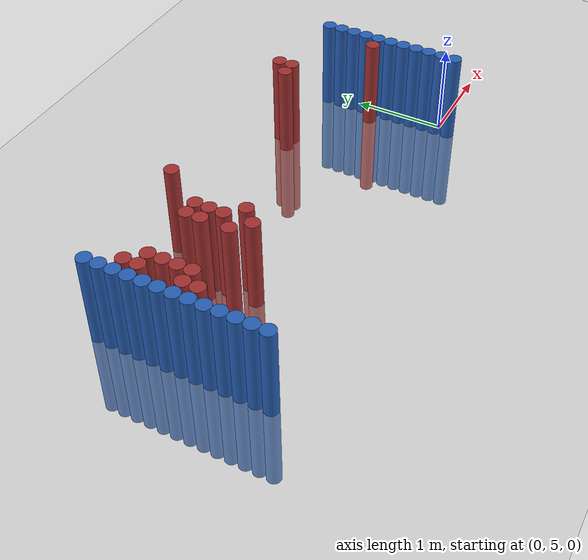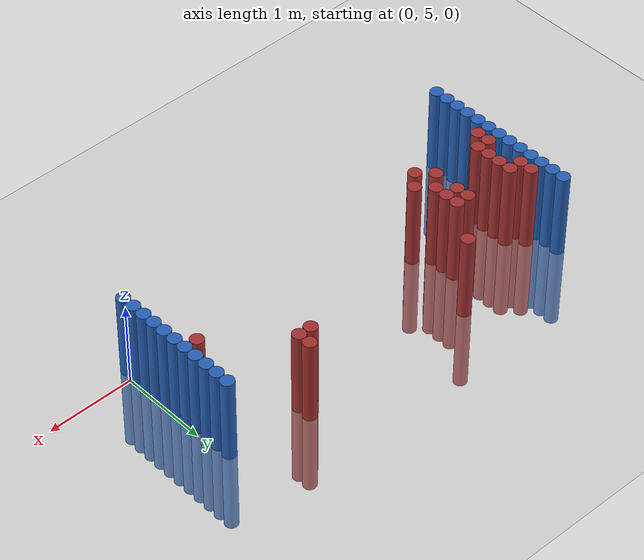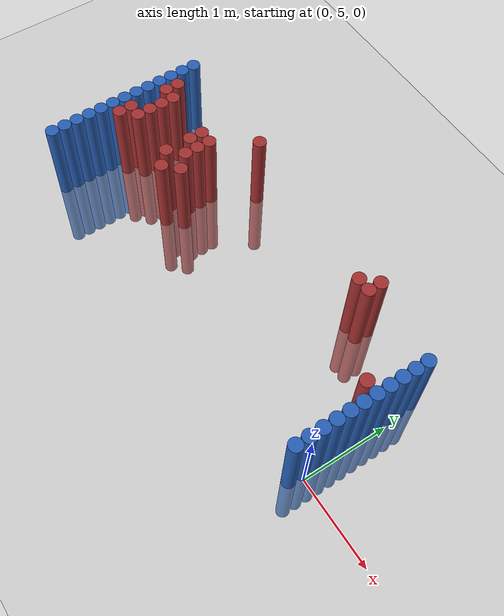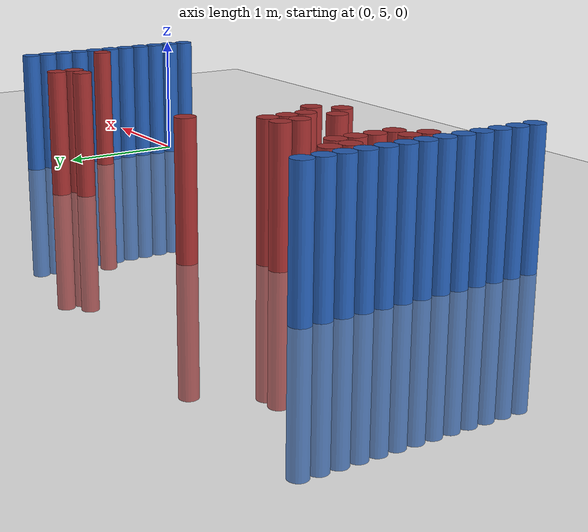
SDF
<sdf version="1.6">
 <world name="default">
  <model name="ground_plane">
   <static>1</static>
   <link name="link">
    <collision name="collision">
     <geometry><plane><normal>0 0 1</normal><size>100 100</size></plane></geometry>
     <surface><friction><ode><mu>100</mu><mu2>50</mu2></ode></friction></surface>
    </collision>
    <visual name="visual">
     <cast_shadows>0</cast_shadows>
     <geometry><plane><normal>0 0 1</normal><size>100 100</size></plane></geometry>
     <material>
      <script><uri>file://media/materials/scripts/gazebo.material</uri><name>Gazebo/Grey</name></script>
     </material>
    </visual>
   </link>
  </model>
  <model name="unit_cylinder_91">
   <static>1</static>
   <pose>-4.425000 4.725000 0.000000 0.000000 0.000000 0.000000</pose>
   <link name="link">
    <inertial>
     <mass>1</mass>
     <inertia><ixx>0.145833</ixx><ixy>0</ixy><ixz>0</ixz><iyy>0.145833</iyy><iyz>0</iyz><izz>0.125</izz></inertia>
    </inertial>
    <collision name="collision">
     <geometry><cylinder><radius>0.075000</radius><length>2</length></cylinder></geometry>
    </collision>
    <visual name="visual">
     <geometry><cylinder><radius>0.075000</radius><length>2</length></cylinder></geometry>
     <material>
      <ambient>0.152000 0.379000 0.720000 1</ambient>
      <diffuse>0.152000 0.379000 0.720000 1</diffuse>
     </material>
     <material>
      <script><name>Gazebo/Grey</name><uri>file://media/materials/scripts/gazebo.material</uri></script>
     </material>
    </visual>
   </link>
  </model>
  <model name="unit_cylinder_92">
   <static>1</static>
   <pose>-0.075000 4.875000 0.000000 0.000000 0.000000 0.000000</pose>
   <link name="link">
    <inertial>
     <mass>1</mass>
     <inertia><ixx>0.145833</ixx><ixy>0</ixy><ixz>0</ixz><iyy>0.145833</iyy><iyz>0</iyz><izz>0.125</izz></inertia>
    </inertial>
    <collision name="collision">
     <geometry><cylinder><radius>0.075000</radius><length>2</length></cylinder></geometry>
    </collision>
    <visual name="visual">
     <geometry><cylinder><radius>0.075000</radius><length>2</length></cylinder></geometry>
     <material>
      <ambient>0.152000 0.379000 0.720000 1</ambient>
      <diffuse>0.152000 0.379000 0.720000 1</diffuse>
     </material>
     <material>
      <script><name>Gazebo/Grey</name><uri>file://media/materials/scripts/gazebo.material</uri></script>
     </material>
    </visual>
   </link>
  </model>
  <model name="unit_cylinder_93">
   <static>1</static>
   <pose>-4.425000 4.875000 0.000000 0.000000 0.000000 0.000000</pose>
   <link name="link">
    <inertial>
     <mass>1</mass>
     <inertia><ixx>0.145833</ixx><ixy>0</ixy><ixz>0</ixz><iyy>0.145833</iyy><iyz>0</iyz><izz>0.125</izz></inertia>
    </inertial>
    <collision name="collision">
     <geometry><cylinder><radius>0.075000</radius><length>2</length></cylinder></geometry>
    </collision>
    <visual name="visual">
     <geometry><cylinder><radius>0.075000</radius><length>2</length></cylinder></geometry>
     <material>
      <ambient>0.152000 0.379000 0.720000 1</ambient>
      <diffuse>0.152000 0.379000 0.720000 1</diffuse>
     </material>
     <material>
      <script><name>Gazebo/Grey</name><uri>file://media/materials/scripts/gazebo.material</uri></script>
     </material>
    </visual>
   </link>
  </model>
  <model name="unit_cylinder_94">
   <static>1</static>
   <pose>-0.075000 5.025000 0.000000 0.000000 0.000000 0.000000</pose>
   <link name="link">
    <inertial>
     <mass>1</mass>
     <inertia><ixx>0.145833</ixx><ixy>0</ixy><ixz>0</ixz><iyy>0.145833</iyy><iyz>0</iyz><izz>0.125</izz></inertia>
    </inertial>
    <collision name="collision">
     <geometry><cylinder><radius>0.075000</radius><length>2</length></cylinder></geometry>
    </collision>
    <visual name="visual">
     <geometry><cylinder><radius>0.075000</radius><length>2</length></cylinder></geometry>
     <material>
      <ambient>0.152000 0.379000 0.720000 1</ambient>
      <diffuse>0.152000 0.379000 0.720000 1</diffuse>
     </material>
     <material>
      <script><name>Gazebo/Grey</name><uri>file://media/materials/scripts/gazebo.material</uri></script>
     </material>
    </visual>
   </link>
  </model>
  <model name="unit_cylinder_95">
   <static>1</static>
   <pose>-4.425000 5.025000 0.000000 0.000000 0.000000 0.000000</pose>
   <link name="link">
    <inertial>
     <mass>1</mass>
     <inertia><ixx>0.145833</ixx><ixy>0</ixy><ixz>0</ixz><iyy>0.145833</iyy><iyz>0</iyz><izz>0.125</izz></inertia>
    </inertial>
    <collision name="collision">
     <geometry><cylinder><radius>0.075000</radius><length>2</length></cylinder></geometry>
    </collision>
    <visual name="visual">
     <geometry><cylinder><radius>0.075000</radius><length>2</length></cylinder></geometry>
     <material>
      <ambient>0.152000 0.379000 0.720000 1</ambient>
      <diffuse>0.152000 0.379000 0.720000 1</diffuse>
     </material>
     <material>
      <script><name>Gazebo/Grey</name><uri>file://media/materials/scripts/gazebo.material</uri></script>
     </material>
    </visual>
   </link>
  </model>
  <model name="unit_cylinder_96">
   <static>1</static>
   <pose>-4.425000 5.175000 0.000000 0.000000 0.000000 0.000000</pose>
   <link name="link">
    <inertial>
     <mass>1</mass>
     <inertia><ixx>0.145833</ixx><ixy>0</ixy><ixz>0</ixz><iyy>0.145833</iyy><iyz>0</iyz><izz>0.125</izz></inertia>
    </inertial>
    <collision name="collision">
     <geometry><cylinder><radius>0.075000</radius><length>2</length></cylinder></geometry>
    </collision>
    <visual name="visual">
     <geometry><cylinder><radius>0.075000</radius><length>2</length></cylinder></geometry>
     <material>
      <ambient>0.152000 0.379000 0.720000 1</ambient>
      <diffuse>0.152000 0.379000 0.720000 1</diffuse>
     </material>
     <material>
      <script><name>Gazebo/Grey</name><uri>file://media/materials/scripts/gazebo.material</uri></script>
     </material>
    </visual>
   </link>
  </model>
  <model name="unit_cylinder_97">
   <static>1</static>
   <pose>-4.425000 5.325000 0.000000 0.000000 0.000000 0.000000</pose>
   <link name="link">
    <inertial>
     <mass>1</mass>
     <inertia><ixx>0.145833</ixx><ixy>0</ixy><ixz>0</ixz><iyy>0.145833</iyy><iyz>0</iyz><izz>0.125</izz></inertia>
    </inertial>
    <collision name="collision">
     <geometry><cylinder><radius>0.075000</radius><length>2</length></cylinder></geometry>
    </collision>
    <visual name="visual">
     <geometry><cylinder><radius>0.075000</radius><length>2</length></cylinder></geometry>
     <material>
      <ambient>0.152000 0.379000 0.720000 1</ambient>
      <diffuse>0.152000 0.379000 0.720000 1</diffuse>
     </material>
     <material>
      <script><name>Gazebo/Grey</name><uri>file://media/materials/scripts/gazebo.material</uri></script>
     </material>
    </visual>
   </link>
  </model>
  <model name="unit_cylinder_98">
   <static>1</static>
   <pose>-4.425000 5.475000 0.000000 0.000000 0.000000 0.000000</pose>
   <link name="link">
    <inertial>
     <mass>1</mass>
     <inertia><ixx>0.145833</ixx><ixy>0</ixy><ixz>0</ixz><iyy>0.145833</iyy><iyz>0</iyz><izz>0.125</izz></inertia>
    </inertial>
    <collision name="collision">
     <geometry><cylinder><radius>0.075000</radius><length>2</length></cylinder></geometry>
    </collision>
    <visual name="visual">
     <geometry><cylinder><radius>0.075000</radius><length>2</length></cylinder></geometry>
     <material>
      <ambient>0.152000 0.379000 0.720000 1</ambient>
      <diffuse>0.152000 0.379000 0.720000 1</diffuse>
     </material>
     <material>
      <script><name>Gazebo/Grey</name><uri>file://media/materials/scripts/gazebo.material</uri></script>
     </material>
    </visual>
   </link>
  </model>
  <model name="unit_cylinder_99">
   <static>1</static>
   <pose>-4.425000 5.625000 0.000000 0.000000 0.000000 0.000000</pose>
   <link name="link">
    <inertial>
     <mass>1</mass>
     <inertia><ixx>0.145833</ixx><ixy>0</ixy><ixz>0</ixz><iyy>0.145833</iyy><iyz>0</iyz><izz>0.125</izz></inertia>
    </inertial>
    <collision name="collision">
     <geometry><cylinder><radius>0.075000</radius><length>2</length></cylinder></geometry>
    </collision>
    <visual name="visual">
     <geometry><cylinder><radius>0.075000</radius><length>2</length></cylinder></geometry>
     <material>
      <ambient>0.152000 0.379000 0.720000 1</ambient>
      <diffuse>0.152000 0.379000 0.720000 1</diffuse>
     </material>
     <material>
      <script><name>Gazebo/Grey</name><uri>file://media/materials/scripts/gazebo.material</uri></script>
     </material>
    </visual>
   </link>
  </model>
  <model name="unit_cylinder_100">
   <static>1</static>
   <pose>-4.425000 5.775000 0.000000 0.000000 0.000000 0.000000</pose>
   <link name="link">
    <inertial>
     <mass>1</mass>
     <inertia><ixx>0.145833</ixx><ixy>0</ixy><ixz>0</ixz><iyy>0.145833</iyy><iyz>0</iyz><izz>0.125</izz></inertia>
    </inertial>
    <collision name="collision">
     <geometry><cylinder><radius>0.075000</radius><length>2</length></cylinder></geometry>
    </collision>
    <visual name="visual">
     <geometry><cylinder><radius>0.075000</radius><length>2</length></cylinder></geometry>
     <material>
      <ambient>0.152000 0.379000 0.720000 1</ambient>
      <diffuse>0.152000 0.379000 0.720000 1</diffuse>
     </material>
     <material>
      <script><name>Gazebo/Grey</name><uri>file://media/materials/scripts/gazebo.material</uri></script>
     </material>
    </visual>
   </link>
  </model>
  <model name="unit_cylinder_101">
   <static>1</static>
   <pose>-4.425000 5.925000 0.000000 0.000000 0.000000 0.000000</pose>
   <link name="link">
    <inertial>
     <mass>1</mass>
     <inertia><ixx>0.145833</ixx><ixy>0</ixy><ixz>0</ixz><iyy>0.145833</iyy><iyz>0</iyz><izz>0.125</izz></inertia>
    </inertial>
    <collision name="collision">
     <geometry><cylinder><radius>0.075000</radius><length>2</length></cylinder></geometry>
    </collision>
    <visual name="visual">
     <geometry><cylinder><radius>0.075000</radius><length>2</length></cylinder></geometry>
     <material>
      <ambient>0.152000 0.379000 0.720000 1</ambient>
      <diffuse>0.152000 0.379000 0.720000 1</diffuse>
     </material>
     <material>
      <script><name>Gazebo/Grey</name><uri>file://media/materials/scripts/gazebo.material</uri></script>
     </material>
    </visual>
   </link>
  </model>
  <model name="unit_cylinder_102">
   <static>1</static>
   <pose>-4.425000 6.075000 0.000000 0.000000 0.000000 0.000000</pose>
   <link name="link">
    <inertial>
     <mass>1</mass>
     <inertia><ixx>0.145833</ixx><ixy>0</ixy><ixz>0</ixz><iyy>0.145833</iyy><iyz>0</iyz><izz>0.125</izz></inertia>
    </inertial>
    <collision name="collision">
     <geometry><cylinder><radius>0.075000</radius><length>2</length></cylinder></geometry>
    </collision>
    <visual name="visual">
     <geometry><cylinder><radius>0.075000</radius><length>2</length></cylinder></geometry>
     <material>
      <ambient>0.152000 0.379000 0.720000 1</ambient>
      <diffuse>0.152000 0.379000 0.720000 1</diffuse>
     </material>
     <material>
      <script><name>Gazebo/Grey</name><uri>file://media/materials/scripts/gazebo.material</uri></script>
     </material>
    </visual>
   </link>
  </model>
  <model name="unit_cylinder_103">
   <static>1</static>
   <pose>-4.425000 6.225000 0.000000 0.000000 0.000000 0.000000</pose>
   <link name="link">
    <inertial>
     <mass>1</mass>
     <inertia><ixx>0.145833</ixx><ixy>0</ixy><ixz>0</ixz><iyy>0.145833</iyy><iyz>0</iyz><izz>0.125</izz></inertia>
    </inertial>
    <collision name="collision">
     <geometry><cylinder><radius>0.075000</radius><length>2</length></cylinder></geometry>
    </collision>
    <visual name="visual">
     <geometry><cylinder><radius>0.075000</radius><length>2</length></cylinder></geometry>
     <material>
      <ambient>0.152000 0.379000 0.720000 1</ambient>
      <diffuse>0.152000 0.379000 0.720000 1</diffuse>
     </material>
     <material>
      <script><name>Gazebo/Grey</name><uri>file://media/materials/scripts/gazebo.material</uri></script>
     </material>
    </visual>
   </link>
  </model>
  <model name="unit_cylinder_104">
   <static>1</static>
   <pose>-4.425000 6.375000 0.000000 0.000000 0.000000 0.000000</pose>
   <link name="link">
    <inertial>
     <mass>1</mass>
     <inertia><ixx>0.145833</ixx><ixy>0</ixy><ixz>0</ixz><iyy>0.145833</iyy><iyz>0</iyz><izz>0.125</izz></inertia>
    </inertial>
    <collision name="collision">
     <geometry><cylinder><radius>0.075000</radius><length>2</length></cylinder></geometry>
    </collision>
    <visual name="visual">
     <geometry><cylinder><radius>0.075000</radius><length>2</length></cylinder></geometry>
     <material>
      <ambient>0.152000 0.379000 0.720000 1</ambient>
      <diffuse>0.152000 0.379000 0.720000 1</diffuse>
     </material>
     <material>
      <script><name>Gazebo/Grey</name><uri>file://media/materials/scripts/gazebo.material</uri></script>
     </material>
    </visual>
   </link>
  </model>
  <model name="unit_cylinder_105">
   <static>1</static>
   <pose>-4.425000 6.525000 0.000000 0.000000 0.000000 0.000000</pose>
   <link name="link">
    <inertial>
     <mass>1</mass>
     <inertia><ixx>0.145833</ixx><ixy>0</ixy><ixz>0</ixz><iyy>0.145833</iyy><iyz>0</iyz><izz>0.125</izz></inertia>
    </inertial>
    <collision name="collision">
     <geometry><cylinder><radius>0.075000</radius><length>2</length></cylinder></geometry>
    </collision>
    <visual name="visual">
     <geometry><cylinder><radius>0.075000</radius><length>2</length></cylinder></geometry>
     <material>
      <ambient>0.152000 0.379000 0.720000 1</ambient>
      <diffuse>0.152000 0.379000 0.720000 1</diffuse>
     </material>
     <material>
      <script><name>Gazebo/Grey</name><uri>file://media/materials/scripts/gazebo.material</uri></script>
     </material>
    </visual>
   </link>
  </model>
  <model name="unit_cylinder_126">
   <static>1</static>
   <pose>-4.275000 5.475000 0.000000 0.000000 0.000000 0.000000</pose>
   <link name="link">
    <inertial>
     <mass>1</mass>
     <inertia><ixx>0.145833</ixx><ixy>0</ixy><ixz>0</ixz><iyy>0.145833</iyy><iyz>0</iyz><izz>0.125</izz></inertia>
    </inertial>
    <collision name="collision">
     <geometry><cylinder><radius>0.075000</radius><length>2</length></cylinder></geometry>
    </collision>
    <visual name="visual">
     <geometry><cylinder><radius>0.075000</radius><length>2</length></cylinder></geometry>
     <material>
      <ambient>0.648000 0.192000 0.192000 1</ambient>
      <diffuse>0.648000 0.192000 0.192000 1</diffuse>
     </material>
     <material>
      <script><name>Gazebo/Grey</name><uri>file://media/materials/scripts/gazebo.material</uri></script>
     </material>
    </visual>
   </link>
  </model>
  <model name="unit_cylinder_127">
   <static>1</static>
   <pose>-4.275000 5.625000 0.000000 0.000000 0.000000 0.000000</pose>
   <link name="link">
    <inertial>
     <mass>1</mass>
     <inertia><ixx>0.145833</ixx><ixy>0</ixy><ixz>0</ixz><iyy>0.145833</iyy><iyz>0</iyz><izz>0.125</izz></inertia>
    </inertial>
    <collision name="collision">
     <geometry><cylinder><radius>0.075000</radius><length>2</length></cylinder></geometry>
    </collision>
    <visual name="visual">
     <geometry><cylinder><radius>0.075000</radius><length>2</length></cylinder></geometry>
     <material>
      <ambient>0.648000 0.192000 0.192000 1</ambient>
      <diffuse>0.648000 0.192000 0.192000 1</diffuse>
     </material>
     <material>
      <script><name>Gazebo/Grey</name><uri>file://media/materials/scripts/gazebo.material</uri></script>
     </material>
    </visual>
   </link>
  </model>
  <model name="unit_cylinder_128">
   <static>1</static>
   <pose>-4.275000 6.075000 0.000000 0.000000 0.000000 0.000000</pose>
   <link name="link">
    <inertial>
     <mass>1</mass>
     <inertia><ixx>0.145833</ixx><ixy>0</ixy><ixz>0</ixz><iyy>0.145833</iyy><iyz>0</iyz><izz>0.125</izz></inertia>
    </inertial>
    <collision name="collision">
     <geometry><cylinder><radius>0.075000</radius><length>2</length></cylinder></geometry>
    </collision>
    <visual name="visual">
     <geometry><cylinder><radius>0.075000</radius><length>2</length></cylinder></geometry>
     <material>
      <ambient>0.648000 0.192000 0.192000 1</ambient>
      <diffuse>0.648000 0.192000 0.192000 1</diffuse>
     </material>
     <material>
      <script><name>Gazebo/Grey</name><uri>file://media/materials/scripts/gazebo.material</uri></script>
     </material>
    </visual>
   </link>
  </model>
  <model name="unit_cylinder_129">
   <static>1</static>
   <pose>-4.275000 6.225000 0.000000 0.000000 0.000000 0.000000</pose>
   <link name="link">
    <inertial>
     <mass>1</mass>
     <inertia><ixx>0.145833</ixx><ixy>0</ixy><ixz>0</ixz><iyy>0.145833</iyy><iyz>0</iyz><izz>0.125</izz></inertia>
    </inertial>
    <collision name="collision">
     <geometry><cylinder><radius>0.075000</radius><length>2</length></cylinder></geometry>
    </collision>
    <visual name="visual">
     <geometry><cylinder><radius>0.075000</radius><length>2</length></cylinder></geometry>
     <material>
      <ambient>0.648000 0.192000 0.192000 1</ambient>
      <diffuse>0.648000 0.192000 0.192000 1</diffuse>
     </material>
     <material>
      <script><name>Gazebo/Grey</name><uri>file://media/materials/scripts/gazebo.material</uri></script>
     </material>
    </visual>
   </link>
  </model>
  <model name="unit_cylinder_137">
   <static>1</static>
   <pose>-4.125000 5.625000 0.000000 0.000000 0.000000 0.000000</pose>
   <link name="link">
    <inertial>
     <mass>1</mass>
     <inertia><ixx>0.145833</ixx><ixy>0</ixy><ixz>0</ixz><iyy>0.145833</iyy><iyz>0</iyz><izz>0.125</izz></inertia>
    </inertial>
    <collision name="collision">
     <geometry><cylinder><radius>0.075000</radius><length>2</length></cylinder></geometry>
    </collision>
    <visual name="visual">
     <geometry><cylinder><radius>0.075000</radius><length>2</length></cylinder></geometry>
     <material>
      <ambient>0.648000 0.192000 0.192000 1</ambient>
      <diffuse>0.648000 0.192000 0.192000 1</diffuse>
     </material>
     <material>
      <script><name>Gazebo/Grey</name><uri>file://media/materials/scripts/gazebo.material</uri></script>
     </material>
    </visual>
   </link>
  </model>
  <model name="unit_cylinder_138">
   <static>1</static>
   <pose>-4.125000 5.775000 0.000000 0.000000 0.000000 0.000000</pose>
   <link name="link">
    <inertial>
     <mass>1</mass>
     <inertia><ixx>0.145833</ixx><ixy>0</ixy><ixz>0</ixz><iyy>0.145833</iyy><iyz>0</iyz><izz>0.125</izz></inertia>
    </inertial>
    <collision name="collision">
     <geometry><cylinder><radius>0.075000</radius><length>2</length></cylinder></geometry>
    </collision>
    <visual name="visual">
     <geometry><cylinder><radius>0.075000</radius><length>2</length></cylinder></geometry>
     <material>
      <ambient>0.648000 0.192000 0.192000 1</ambient>
      <diffuse>0.648000 0.192000 0.192000 1</diffuse>
     </material>
     <material>
      <script><name>Gazebo/Grey</name><uri>file://media/materials/scripts/gazebo.material</uri></script>
     </material>
    </visual>
   </link>
  </model>
  <model name="unit_cylinder_139">
   <static>1</static>
   <pose>-4.125000 5.925000 0.000000 0.000000 0.000000 0.000000</pose>
   <link name="link">
    <inertial>
     <mass>1</mass>
     <inertia><ixx>0.145833</ixx><ixy>0</ixy><ixz>0</ixz><iyy>0.145833</iyy><iyz>0</iyz><izz>0.125</izz></inertia>
    </inertial>
    <collision name="collision">
     <geometry><cylinder><radius>0.075000</radius><length>2</length></cylinder></geometry>
    </collision>
    <visual name="visual">
     <geometry><cylinder><radius>0.075000</radius><length>2</length></cylinder></geometry>
     <material>
      <ambient>0.648000 0.192000 0.192000 1</ambient>
      <diffuse>0.648000 0.192000 0.192000 1</diffuse>
     </material>
     <material>
      <script><name>Gazebo/Grey</name><uri>file://media/materials/scripts/gazebo.material</uri></script>
     </material>
    </visual>
   </link>
  </model>
  <model name="unit_cylinder_140">
   <static>1</static>
   <pose>-4.125000 6.075000 0.000000 0.000000 0.000000 0.000000</pose>
   <link name="link">
    <inertial>
     <mass>1</mass>
     <inertia><ixx>0.145833</ixx><ixy>0</ixy><ixz>0</ixz><iyy>0.145833</iyy><iyz>0</iyz><izz>0.125</izz></inertia>
    </inertial>
    <collision name="collision">
     <geometry><cylinder><radius>0.075000</radius><length>2</length></cylinder></geometry>
    </collision>
    <visual name="visual">
     <geometry><cylinder><radius>0.075000</radius><length>2</length></cylinder></geometry>
     <material>
      <ambient>0.648000 0.192000 0.192000 1</ambient>
      <diffuse>0.648000 0.192000 0.192000 1</diffuse>
     </material>
     <material>
      <script><name>Gazebo/Grey</name><uri>file://media/materials/scripts/gazebo.material</uri></script>
     </material>
    </visual>
   </link>
  </model>
  <model name="unit_cylinder_147">
   <static>1</static>
   <pose>-3.525000 5.625000 0.000000 0.000000 0.000000 0.000000</pose>
   <link name="link">
    <inertial>
     <mass>1</mass>
     <inertia><ixx>0.145833</ixx><ixy>0</ixy><ixz>0</ixz><iyy>0.145833</iyy><iyz>0</iyz><izz>0.125</izz></inertia>
    </inertial>
    <collision name="collision">
     <geometry><cylinder><radius>0.075000</radius><length>2</length></cylinder></geometry>
    </collision>
    <visual name="visual">
     <geometry><cylinder><radius>0.075000</radius><length>2</length></cylinder></geometry>
     <material>
      <ambient>0.648000 0.192000 0.192000 1</ambient>
      <diffuse>0.648000 0.192000 0.192000 1</diffuse>
     </material>
     <material>
      <script><name>Gazebo/Grey</name><uri>file://media/materials/scripts/gazebo.material</uri></script>
     </material>
    </visual>
   </link>
  </model>
  <model name="unit_cylinder_148">
   <static>1</static>
   <pose>-3.525000 5.925000 0.000000 0.000000 0.000000 0.000000</pose>
   <link name="link">
    <inertial>
     <mass>1</mass>
     <inertia><ixx>0.145833</ixx><ixy>0</ixy><ixz>0</ixz><iyy>0.145833</iyy><iyz>0</iyz><izz>0.125</izz></inertia>
    </inertial>
    <collision name="collision">
     <geometry><cylinder><radius>0.075000</radius><length>2</length></cylinder></geometry>
    </collision>
    <visual name="visual">
     <geometry><cylinder><radius>0.075000</radius><length>2</length></cylinder></geometry>
     <material>
      <ambient>0.648000 0.192000 0.192000 1</ambient>
      <diffuse>0.648000 0.192000 0.192000 1</diffuse>
     </material>
     <material>
      <script><name>Gazebo/Grey</name><uri>file://media/materials/scripts/gazebo.material</uri></script>
     </material>
    </visual>
   </link>
  </model>
  <model name="unit_cylinder_149">
   <static>1</static>
   <pose>-3.525000 6.075000 0.000000 0.000000 0.000000 0.000000</pose>
   <link name="link">
    <inertial>
     <mass>1</mass>
     <inertia><ixx>0.145833</ixx><ixy>0</ixy><ixz>0</ixz><iyy>0.145833</iyy><iyz>0</iyz><izz>0.125</izz></inertia>
    </inertial>
    <collision name="collision">
     <geometry><cylinder><radius>0.075000</radius><length>2</length></cylinder></geometry>
    </collision>
    <visual name="visual">
     <geometry><cylinder><radius>0.075000</radius><length>2</length></cylinder></geometry>
     <material>
      <ambient>0.648000 0.192000 0.192000 1</ambient>
      <diffuse>0.648000 0.192000 0.192000 1</diffuse>
     </material>
     <material>
      <script><name>Gazebo/Grey</name><uri>file://media/materials/scripts/gazebo.material</uri></script>
     </material>
    </visual>
   </link>
  </model>
  <model name="unit_cylinder_156">
   <static>1</static>
   <pose>-3.375000 5.475000 0.000000 0.000000 0.000000 0.000000</pose>
   <link name="link">
    <inertial>
     <mass>1</mass>
     <inertia><ixx>0.145833</ixx><ixy>0</ixy><ixz>0</ixz><iyy>0.145833</iyy><iyz>0</iyz><izz>0.125</izz></inertia>
    </inertial>
    <collision name="collision">
     <geometry><cylinder><radius>0.075000</radius><length>2</length></cylinder></geometry>
    </collision>
    <visual name="visual">
     <geometry><cylinder><radius>0.075000</radius><length>2</length></cylinder></geometry>
     <material>
      <ambient>0.648000 0.192000 0.192000 1</ambient>
      <diffuse>0.648000 0.192000 0.192000 1</diffuse>
     </material>
     <material>
      <script><name>Gazebo/Grey</name><uri>file://media/materials/scripts/gazebo.material</uri></script>
     </material>
    </visual>
   </link>
  </model>
  <model name="unit_cylinder_157">
   <static>1</static>
   <pose>-3.375000 5.775000 0.000000 0.000000 0.000000 0.000000</pose>
   <link name="link">
    <inertial>
     <mass>1</mass>
     <inertia><ixx>0.145833</ixx><ixy>0</ixy><ixz>0</ixz><iyy>0.145833</iyy><iyz>0</iyz><izz>0.125</izz></inertia>
    </inertial>
    <collision name="collision">
     <geometry><cylinder><radius>0.075000</radius><length>2</length></cylinder></geometry>
    </collision>
    <visual name="visual">
     <geometry><cylinder><radius>0.075000</radius><length>2</length></cylinder></geometry>
     <material>
      <ambient>0.648000 0.192000 0.192000 1</ambient>
      <diffuse>0.648000 0.192000 0.192000 1</diffuse>
     </material>
     <material>
      <script><name>Gazebo/Grey</name><uri>file://media/materials/scripts/gazebo.material</uri></script>
     </material>
    </visual>
   </link>
  </model>
  <model name="unit_cylinder_158">
   <static>1</static>
   <pose>-3.375000 5.925000 0.000000 0.000000 0.000000 0.000000</pose>
   <link name="link">
    <inertial>
     <mass>1</mass>
     <inertia><ixx>0.145833</ixx><ixy>0</ixy><ixz>0</ixz><iyy>0.145833</iyy><iyz>0</iyz><izz>0.125</izz></inertia>
    </inertial>
    <collision name="collision">
     <geometry><cylinder><radius>0.075000</radius><length>2</length></cylinder></geometry>
    </collision>
    <visual name="visual">
     <geometry><cylinder><radius>0.075000</radius><length>2</length></cylinder></geometry>
     <material>
      <ambient>0.648000 0.192000 0.192000 1</ambient>
      <diffuse>0.648000 0.192000 0.192000 1</diffuse>
     </material>
     <material>
      <script><name>Gazebo/Grey</name><uri>file://media/materials/scripts/gazebo.material</uri></script>
     </material>
    </visual>
   </link>
  </model>
  <model name="unit_cylinder_159">
   <static>1</static>
   <pose>-3.375000 6.075000 0.000000 0.000000 0.000000 0.000000</pose>
   <link name="link">
    <inertial>
     <mass>1</mass>
     <inertia><ixx>0.145833</ixx><ixy>0</ixy><ixz>0</ixz><iyy>0.145833</iyy><iyz>0</iyz><izz>0.125</izz></inertia>
    </inertial>
    <collision name="collision">
     <geometry><cylinder><radius>0.075000</radius><length>2</length></cylinder></geometry>
    </collision>
    <visual name="visual">
     <geometry><cylinder><radius>0.075000</radius><length>2</length></cylinder></geometry>
     <material>
      <ambient>0.648000 0.192000 0.192000 1</ambient>
      <diffuse>0.648000 0.192000 0.192000 1</diffuse>
     </material>
     <material>
      <script><name>Gazebo/Grey</name><uri>file://media/materials/scripts/gazebo.material</uri></script>
     </material>
    </visual>
   </link>
  </model>
  <model name="unit_cylinder_166">
   <static>1</static>
   <pose>-3.225000 5.625000 0.000000 0.000000 0.000000 0.000000</pose>
   <link name="link">
    <inertial>
     <mass>1</mass>
     <inertia><ixx>0.145833</ixx><ixy>0</ixy><ixz>0</ixz><iyy>0.145833</iyy><iyz>0</iyz><izz>0.125</izz></inertia>
    </inertial>
    <collision name="collision">
     <geometry><cylinder><radius>0.075000</radius><length>2</length></cylinder></geometry>
    </collision>
    <visual name="visual">
     <geometry><cylinder><radius>0.075000</radius><length>2</length></cylinder></geometry>
     <material>
      <ambient>0.648000 0.192000 0.192000 1</ambient>
      <diffuse>0.648000 0.192000 0.192000 1</diffuse>
     </material>
     <material>
      <script><name>Gazebo/Grey</name><uri>file://media/materials/scripts/gazebo.material</uri></script>
     </material>
    </visual>
   </link>
  </model>
  <model name="unit_cylinder_170">
   <static>1</static>
   <pose>-3.075000 6.525000 0.000000 0.000000 0.000000 0.000000</pose>
   <link name="link">
    <inertial>
     <mass>1</mass>
     <inertia><ixx>0.145833</ixx><ixy>0</ixy><ixz>0</ixz><iyy>0.145833</iyy><iyz>0</iyz><izz>0.125</izz></inertia>
    </inertial>
    <collision name="collision">
     <geometry><cylinder><radius>0.075000</radius><length>2</length></cylinder></geometry>
    </collision>
    <visual name="visual">
     <geometry><cylinder><radius>0.075000</radius><length>2</length></cylinder></geometry>
     <material>
      <ambient>0.648000 0.192000 0.192000 1</ambient>
      <diffuse>0.648000 0.192000 0.192000 1</diffuse>
     </material>
     <material>
      <script><name>Gazebo/Grey</name><uri>file://media/materials/scripts/gazebo.material</uri></script>
     </material>
    </visual>
   </link>
  </model>
  <model name="unit_cylinder_180">
   <static>1</static>
   <pose>-1.125000 6.375000 0.000000 0.000000 0.000000 0.000000</pose>
   <link name="link">
    <inertial>
     <mass>1</mass>
     <inertia><ixx>0.145833</ixx><ixy>0</ixy><ixz>0</ixz><iyy>0.145833</iyy><iyz>0</iyz><izz>0.125</izz></inertia>
    </inertial>
    <collision name="collision">
     <geometry><cylinder><radius>0.075000</radius><length>2</length></cylinder></geometry>
    </collision>
    <visual name="visual">
     <geometry><cylinder><radius>0.075000</radius><length>2</length></cylinder></geometry>
     <material>
      <ambient>0.648000 0.192000 0.192000 1</ambient>
      <diffuse>0.648000 0.192000 0.192000 1</diffuse>
     </material>
     <material>
      <script><name>Gazebo/Grey</name><uri>file://media/materials/scripts/gazebo.material</uri></script>
     </material>
    </visual>
   </link>
  </model>
  <model name="unit_cylinder_182">
   <static>1</static>
   <pose>-0.975000 6.375000 0.000000 0.000000 0.000000 0.000000</pose>
   <link name="link">
    <inertial>
     <mass>1</mass>
     <inertia><ixx>0.145833</ixx><ixy>0</ixy><ixz>0</ixz><iyy>0.145833</iyy><iyz>0</iyz><izz>0.125</izz></inertia>
    </inertial>
    <collision name="collision">
     <geometry><cylinder><radius>0.075000</radius><length>2</length></cylinder></geometry>
    </collision>
    <visual name="visual">
     <geometry><cylinder><radius>0.075000</radius><length>2</length></cylinder></geometry>
     <material>
      <ambient>0.648000 0.192000 0.192000 1</ambient>
      <diffuse>0.648000 0.192000 0.192000 1</diffuse>
     </material>
     <material>
      <script><name>Gazebo/Grey</name><uri>file://media/materials/scripts/gazebo.material</uri></script>
     </material>
    </visual>
   </link>
  </model>
  <model name="unit_cylinder_183">
   <static>1</static>
   <pose>-0.975000 6.525000 0.000000 0.000000 0.000000 0.000000</pose>
   <link name="link">
    <inertial>
     <mass>1</mass>
     <inertia><ixx>0.145833</ixx><ixy>0</ixy><ixz>0</ixz><iyy>0.145833</iyy><iyz>0</iyz><izz>0.125</izz></inertia>
    </inertial>
    <collision name="collision">
     <geometry><cylinder><radius>0.075000</radius><length>2</length></cylinder></geometry>
    </collision>
    <visual name="visual">
     <geometry><cylinder><radius>0.075000</radius><length>2</length></cylinder></geometry>
     <material>
      <ambient>0.648000 0.192000 0.192000 1</ambient>
      <diffuse>0.648000 0.192000 0.192000 1</diffuse>
     </material>
     <material>
      <script><name>Gazebo/Grey</name><uri>file://media/materials/scripts/gazebo.material</uri></script>
     </material>
    </visual>
   </link>
  </model>
  <model name="unit_cylinder_189">
   <static>1</static>
   <pose>-0.225000 5.775000 0.000000 0.000000 0.000000 0.000000</pose>
   <link name="link">
    <inertial>
     <mass>1</mass>
     <inertia><ixx>0.145833</ixx><ixy>0</ixy><ixz>0</ixz><iyy>0.145833</iyy><iyz>0</iyz><izz>0.125</izz></inertia>
    </inertial>
    <collision name="collision">
     <geometry><cylinder><radius>0.075000</radius><length>2</length></cylinder></geometry>
    </collision>
    <visual name="visual">
     <geometry><cylinder><radius>0.075000</radius><length>2</length></cylinder></geometry>
     <material>
      <ambient>0.648000 0.192000 0.192000 1</ambient>
      <diffuse>0.648000 0.192000 0.192000 1</diffuse>
     </material>
     <material>
      <script><name>Gazebo/Grey</name><uri>file://media/materials/scripts/gazebo.material</uri></script>
     </material>
    </visual>
   </link>
  </model>
  <model name="unit_cylinder_196">
   <static>1</static>
   <pose>-0.075000 5.175000 0.000000 0.000000 0.000000 0.000000</pose>
   <link name="link">
    <inertial>
     <mass>1</mass>
     <inertia><ixx>0.145833</ixx><ixy>0</ixy><ixz>0</ixz><iyy>0.145833</iyy><iyz>0</iyz><izz>0.125</izz></inertia>
    </inertial>
    <collision name="collision">
     <geometry><cylinder><radius>0.075000</radius><length>2</length></cylinder></geometry>
    </collision>
    <visual name="visual">
     <geometry><cylinder><radius>0.075000</radius><length>2</length></cylinder></geometry>
     <material>
      <ambient>0.152000 0.379000 0.720000 1</ambient>
      <diffuse>0.152000 0.379000 0.720000 1</diffuse>
     </material>
     <material>
      <script><name>Gazebo/Grey</name><uri>file://media/materials/scripts/gazebo.material</uri></script>
     </material>
    </visual>
   </link>
  </model>
  <model name="unit_cylinder_197">
   <static>1</static>
   <pose>-0.075000 5.325000 0.000000 0.000000 0.000000 0.000000</pose>
   <link name="link">
    <inertial>
     <mass>1</mass>
     <inertia><ixx>0.145833</ixx><ixy>0</ixy><ixz>0</ixz><iyy>0.145833</iyy><iyz>0</iyz><izz>0.125</izz></inertia>
    </inertial>
    <collision name="collision">
     <geometry><cylinder><radius>0.075000</radius><length>2</length></cylinder></geometry>
    </collision>
    <visual name="visual">
     <geometry><cylinder><radius>0.075000</radius><length>2</length></cylinder></geometry>
     <material>
      <ambient>0.152000 0.379000 0.720000 1</ambient>
      <diffuse>0.152000 0.379000 0.720000 1</diffuse>
     </material>
     <material>
      <script><name>Gazebo/Grey</name><uri>file://media/materials/scripts/gazebo.material</uri></script>
     </material>
    </visual>
   </link>
  </model>
  <model name="unit_cylinder_198">
   <static>1</static>
   <pose>-0.075000 5.475000 0.000000 0.000000 0.000000 0.000000</pose>
   <link name="link">
    <inertial>
     <mass>1</mass>
     <inertia><ixx>0.145833</ixx><ixy>0</ixy><ixz>0</ixz><iyy>0.145833</iyy><iyz>0</iyz><izz>0.125</izz></inertia>
    </inertial>
    <collision name="collision">
     <geometry><cylinder><radius>0.075000</radius><length>2</length></cylinder></geometry>
    </collision>
    <visual name="visual">
     <geometry><cylinder><radius>0.075000</radius><length>2</length></cylinder></geometry>
     <material>
      <ambient>0.152000 0.379000 0.720000 1</ambient>
      <diffuse>0.152000 0.379000 0.720000 1</diffuse>
     </material>
     <material>
      <script><name>Gazebo/Grey</name><uri>file://media/materials/scripts/gazebo.material</uri></script>
     </material>
    </visual>
   </link>
  </model>
  <model name="unit_cylinder_199">
   <static>1</static>
   <pose>-0.075000 5.625000 0.000000 0.000000 0.000000 0.000000</pose>
   <link name="link">
    <inertial>
     <mass>1</mass>
     <inertia><ixx>0.145833</ixx><ixy>0</ixy><ixz>0</ixz><iyy>0.145833</iyy><iyz>0</iyz><izz>0.125</izz></inertia>
    </inertial>
    <collision name="collision">
     <geometry><cylinder><radius>0.075000</radius><length>2</length></cylinder></geometry>
    </collision>
    <visual name="visual">
     <geometry><cylinder><radius>0.075000</radius><length>2</length></cylinder></geometry>
     <material>
      <ambient>0.152000 0.379000 0.720000 1</ambient>
      <diffuse>0.152000 0.379000 0.720000 1</diffuse>
     </material>
     <material>
      <script><name>Gazebo/Grey</name><uri>file://media/materials/scripts/gazebo.material</uri></script>
     </material>
    </visual>
   </link>
  </model>
  <model name="unit_cylinder_200">
   <static>1</static>
   <pose>-0.075000 5.775000 0.000000 0.000000 0.000000 0.000000</pose>
   <link name="link">
    <inertial>
     <mass>1</mass>
     <inertia><ixx>0.145833</ixx><ixy>0</ixy><ixz>0</ixz><iyy>0.145833</iyy><iyz>0</iyz><izz>0.125</izz></inertia>
    </inertial>
    <collision name="collision">
     <geometry><cylinder><radius>0.075000</radius><length>2</length></cylinder></geometry>
    </collision>
    <visual name="visual">
     <geometry><cylinder><radius>0.075000</radius><length>2</length></cylinder></geometry>
     <material>
      <ambient>0.152000 0.379000 0.720000 1</ambient>
      <diffuse>0.152000 0.379000 0.720000 1</diffuse>
     </material>
     <material>
      <script><name>Gazebo/Grey</name><uri>file://media/materials/scripts/gazebo.material</uri></script>
     </material>
    </visual>
   </link>
  </model>
  <model name="unit_cylinder_201">
   <static>1</static>
   <pose>-0.075000 5.925000 0.000000 0.000000 0.000000 0.000000</pose>
   <link name="link">
    <inertial>
     <mass>1</mass>
     <inertia><ixx>0.145833</ixx><ixy>0</ixy><ixz>0</ixz><iyy>0.145833</iyy><iyz>0</iyz><izz>0.125</izz></inertia>
    </inertial>
    <collision name="collision">
     <geometry><cylinder><radius>0.075000</radius><length>2</length></cylinder></geometry>
    </collision>
    <visual name="visual">
     <geometry><cylinder><radius>0.075000</radius><length>2</length></cylinder></geometry>
     <material>
      <ambient>0.152000 0.379000 0.720000 1</ambient>
      <diffuse>0.152000 0.379000 0.720000 1</diffuse>
     </material>
     <material>
      <script><name>Gazebo/Grey</name><uri>file://media/materials/scripts/gazebo.material</uri></script>
     </material>
    </visual>
   </link>
  </model>
  <model name="unit_cylinder_202">
   <static>1</static>
   <pose>-0.075000 6.075000 0.000000 0.000000 0.000000 0.000000</pose>
   <link name="link">
    <inertial>
     <mass>1</mass>
     <inertia><ixx>0.145833</ixx><ixy>0</ixy><ixz>0</ixz><iyy>0.145833</iyy><iyz>0</iyz><izz>0.125</izz></inertia>
    </inertial>
    <collision name="collision">
     <geometry><cylinder><radius>0.075000</radius><length>2</length></cylinder></geometry>
    </collision>
    <visual name="visual">
     <geometry><cylinder><radius>0.075000</radius><length>2</length></cylinder></geometry>
     <material>
      <ambient>0.152000 0.379000 0.720000 1</ambient>
      <diffuse>0.152000 0.379000 0.720000 1</diffuse>
     </material>
     <material>
      <script><name>Gazebo/Grey</name><uri>file://media/materials/scripts/gazebo.material</uri></script>
     </material>
    </visual>
   </link>
  </model>
  <model name="unit_cylinder_203">
   <static>1</static>
   <pose>-0.075000 6.225000 0.000000 0.000000 0.000000 0.000000</pose>
   <link name="link">
    <inertial>
     <mass>1</mass>
     <inertia><ixx>0.145833</ixx><ixy>0</ixy><ixz>0</ixz><iyy>0.145833</iyy><iyz>0</iyz><izz>0.125</izz></inertia>
    </inertial>
    <collision name="collision">
     <geometry><cylinder><radius>0.075000</radius><length>2</length></cylinder></geometry>
    </collision>
    <visual name="visual">
     <geometry><cylinder><radius>0.075000</radius><length>2</length></cylinder></geometry>
     <material>
      <ambient>0.152000 0.379000 0.720000 1</ambient>
      <diffuse>0.152000 0.379000 0.720000 1</diffuse>
     </material>
     <material>
      <script><name>Gazebo/Grey</name><uri>file://media/materials/scripts/gazebo.material</uri></script>
     </material>
    </visual>
   </link>
  </model>
  <model name="unit_cylinder_204">
   <static>1</static>
   <pose>-0.075000 6.375000 0.000000 0.000000 0.000000 0.000000</pose>
   <link name="link">
    <inertial>
     <mass>1</mass>
     <inertia><ixx>0.145833</ixx><ixy>0</ixy><ixz>0</ixz><iyy>0.145833</iyy><iyz>0</iyz><izz>0.125</izz></inertia>
    </inertial>
    <collision name="collision">
     <geometry><cylinder><radius>0.075000</radius><length>2</length></cylinder></geometry>
    </collision>
    <visual name="visual">
     <geometry><cylinder><radius>0.075000</radius><length>2</length></cylinder></geometry>
     <material>
      <ambient>0.152000 0.379000 0.720000 1</ambient>
      <diffuse>0.152000 0.379000 0.720000 1</diffuse>
     </material>
     <material>
      <script><name>Gazebo/Grey</name><uri>file://media/materials/scripts/gazebo.material</uri></script>
     </material>
    </visual>
   </link>
  </model>
 </world>
</sdf>
